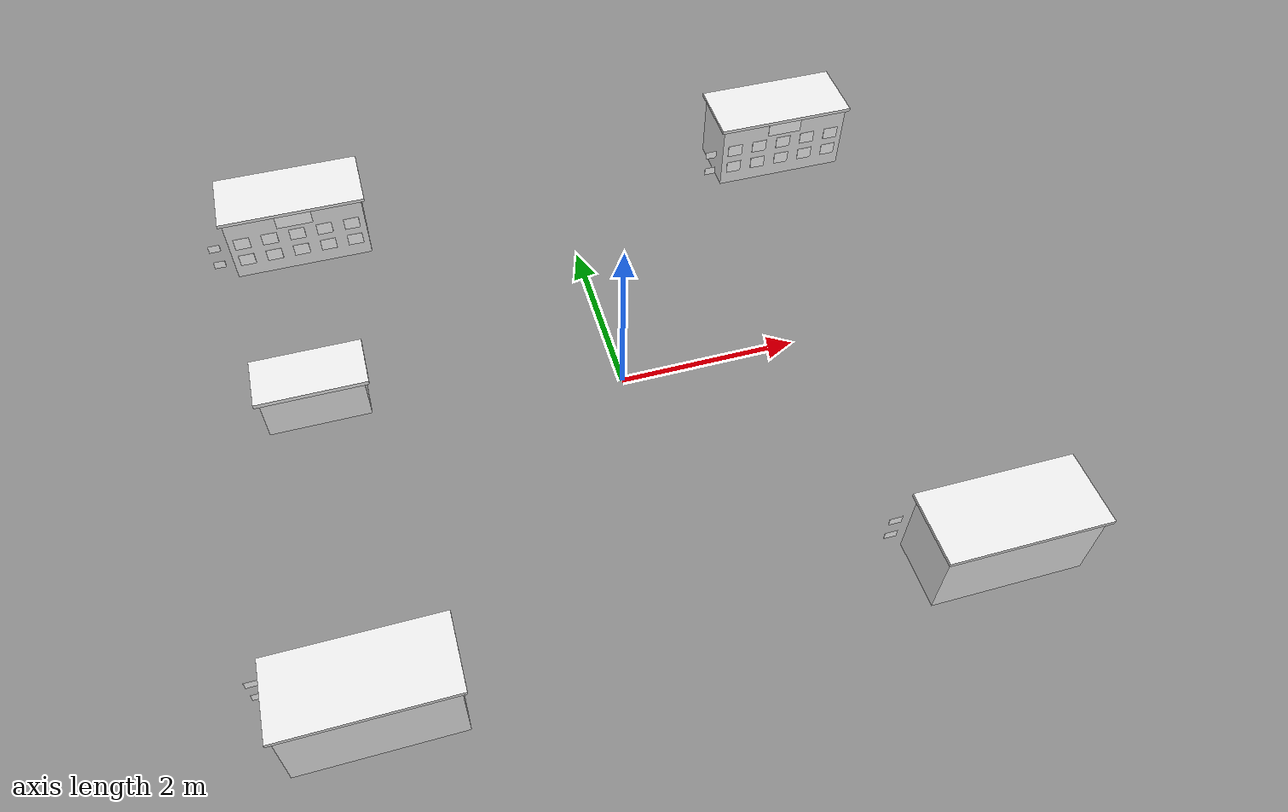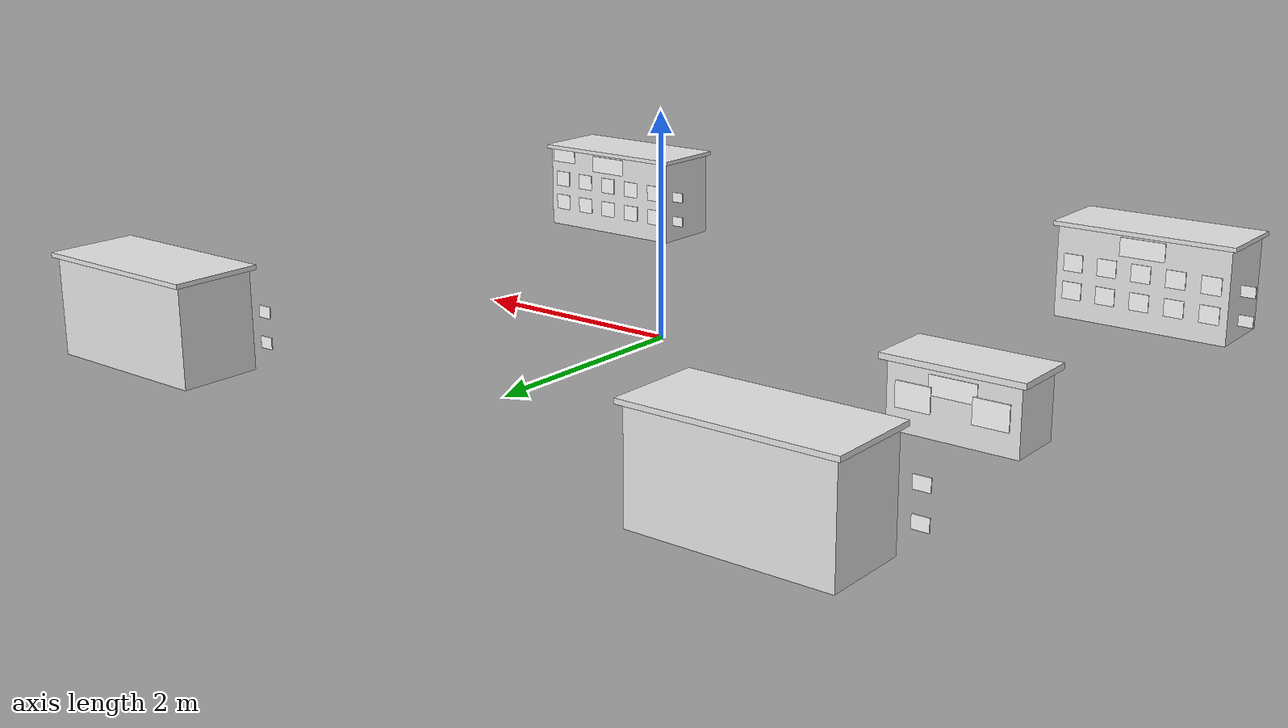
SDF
<sdf version="1.6">
 <world name="sq_community">
  <model name="sq_buildings">
   <static>1</static>
   <link name="bld_A_body">
    <collision name="bld_A_body_c">
     <pose>-3.2 3.1 0.425 0 0 0</pose>
     <geometry><box><size>1.6 0.7 0.85</size></box></geometry>
    </collision>
    <visual name="bld_A_body_v">
     <pose>-3.2 3.1 0.425 0 0 0</pose>
     <geometry><box><size>1.6 0.7 0.85</size></box></geometry>
     <material>
      <script><uri>file://media/materials/scripts/gazebo.material</uri><name>Gazebo/White</name></script>
      <ambient>0.407 0.396 0.374 1</ambient>
      <diffuse>0.74 0.72 0.68 1</diffuse>
      <specular>0.1 0.1 0.1 1</specular>
      <emissive>0 0 0 1</emissive>
     </material>
    </visual>
   </link>
   <link name="bld_A_win0">
    <collision name="bld_A_win0_c">
     <pose>-3.84 2.746 0.26 0 0 0</pose>
     <geometry><box><size>0.18 0.008 0.16</size></box></geometry>
    </collision>
    <visual name="bld_A_win0_v">
     <pose>-3.84 2.746 0.26 0 0 0</pose>
     <geometry><box><size>0.18 0.008 0.16</size></box></geometry>
     <material>
      <script>
       <uri>model://sq_textures/materials/scripts</uri>
       <uri>model://sq_textures/materials/textures</uri>
       <name>SQ_win_fire</name>
      </script>
      <ambient>1 1 1 1</ambient>
      <diffuse>1 1 1 1</diffuse>
      <specular>0.05 0.05 0.05 1</specular>
     </material>
    </visual>
   </link>
   <link name="bld_A_win1">
    <collision name="bld_A_win1_c">
     <pose>-3.52 2.746 0.26 0 0 0</pose>
     <geometry><box><size>0.18 0.008 0.16</size></box></geometry>
    </collision>
    <visual name="bld_A_win1_v">
     <pose>-3.52 2.746 0.26 0 0 0</pose>
     <geometry><box><size>0.18 0.008 0.16</size></box></geometry>
     <material>
      <script>
       <uri>model://sq_textures/materials/scripts</uri>
       <uri>model://sq_textures/materials/textures</uri>
       <name>SQ_win_normal</name>
      </script>
      <ambient>1 1 1 1</ambient>
      <diffuse>1 1 1 1</diffuse>
      <specular>0.05 0.05 0.05 1</specular>
     </material>
    </visual>
   </link>
   <link name="bld_A_win2">
    <collision name="bld_A_win2_c">
     <pose>-3.2 2.746 0.26 0 0 0</pose>
     <geometry><box><size>0.18 0.008 0.16</size></box></geometry>
    </collision>
    <visual name="bld_A_win2_v">
     <pose>-3.2 2.746 0.26 0 0 0</pose>
     <geometry><box><size>0.18 0.008 0.16</size></box></geometry>
     <material>
      <script>
       <uri>model://sq_textures/materials/scripts</uri>
       <uri>model://sq_textures/materials/textures</uri>
       <name>SQ_win_normal</name>
      </script>
      <ambient>1 1 1 1</ambient>
      <diffuse>1 1 1 1</diffuse>
      <specular>0.05 0.05 0.05 1</specular>
     </material>
    </visual>
   </link>
   <link name="bld_A_win3">
    <collision name="bld_A_win3_c">
     <pose>-2.88 2.746 0.26 0 0 0</pose>
     <geometry><box><size>0.18 0.008 0.16</size></box></geometry>
    </collision>
    <visual name="bld_A_win3_v">
     <pose>-2.88 2.746 0.26 0 0 0</pose>
     <geometry><box><size>0.18 0.008 0.16</size></box></geometry>
     <material>
      <script>
       <uri>model://sq_textures/materials/scripts</uri>
       <uri>model://sq_textures/materials/textures</uri>
       <name>SQ_win_fire</name>
      </script>
      <ambient>1 1 1 1</ambient>
      <diffuse>1 1 1 1</diffuse>
      <specular>0.05 0.05 0.05 1</specular>
     </material>
    </visual>
   </link>
   <link name="bld_A_win4">
    <collision name="bld_A_win4_c">
     <pose>-2.56 2.746 0.26 0 0 0</pose>
     <geometry><box><size>0.18 0.008 0.16</size></box></geometry>
    </collision>
    <visual name="bld_A_win4_v">
     <pose>-2.56 2.746 0.26 0 0 0</pose>
     <geometry><box><size>0.18 0.008 0.16</size></box></geometry>
     <material>
      <script>
       <uri>model://sq_textures/materials/scripts</uri>
       <uri>model://sq_textures/materials/textures</uri>
       <name>SQ_win_normal</name>
      </script>
      <ambient>1 1 1 1</ambient>
      <diffuse>1 1 1 1</diffuse>
      <specular>0.05 0.05 0.05 1</specular>
     </material>
    </visual>
   </link>
   <link name="bld_A_win5">
    <collision name="bld_A_win5_c">
     <pose>-3.84 2.746 0.52 0 0 0</pose>
     <geometry><box><size>0.18 0.008 0.16</size></box></geometry>
    </collision>
    <visual name="bld_A_win5_v">
     <pose>-3.84 2.746 0.52 0 0 0</pose>
     <geometry><box><size>0.18 0.008 0.16</size></box></geometry>
     <material>
      <script>
       <uri>model://sq_textures/materials/scripts</uri>
       <uri>model://sq_textures/materials/textures</uri>
       <name>SQ_win_normal</name>
      </script>
      <ambient>1 1 1 1</ambient>
      <diffuse>1 1 1 1</diffuse>
      <specular>0.05 0.05 0.05 1</specular>
     </material>
    </visual>
   </link>
   <link name="bld_A_win6">
    <collision name="bld_A_win6_c">
     <pose>-3.52 2.746 0.52 0 0 0</pose>
     <geometry><box><size>0.18 0.008 0.16</size></box></geometry>
    </collision>
    <visual name="bld_A_win6_v">
     <pose>-3.52 2.746 0.52 0 0 0</pose>
     <geometry><box><size>0.18 0.008 0.16</size></box></geometry>
     <material>
      <script>
       <uri>model://sq_textures/materials/scripts</uri>
       <uri>model://sq_textures/materials/textures</uri>
       <name>SQ_win_fire</name>
      </script>
      <ambient>1 1 1 1</ambient>
      <diffuse>1 1 1 1</diffuse>
      <specular>0.05 0.05 0.05 1</specular>
     </material>
    </visual>
   </link>
   <link name="bld_A_win7">
    <collision name="bld_A_win7_c">
     <pose>-3.2 2.746 0.52 0 0 0</pose>
     <geometry><box><size>0.18 0.008 0.16</size></box></geometry>
    </collision>
    <visual name="bld_A_win7_v">
     <pose>-3.2 2.746 0.52 0 0 0</pose>
     <geometry><box><size>0.18 0.008 0.16</size></box></geometry>
     <material>
      <script>
       <uri>model://sq_textures/materials/scripts</uri>
       <uri>model://sq_textures/materials/textures</uri>
       <name>SQ_win_normal</name>
      </script>
      <ambient>1 1 1 1</ambient>
      <diffuse>1 1 1 1</diffuse>
      <specular>0.05 0.05 0.05 1</specular>
     </material>
    </visual>
   </link>
   <link name="bld_A_win8">
    <collision name="bld_A_win8_c">
     <pose>-2.88 2.746 0.52 0 0 0</pose>
     <geometry><box><size>0.18 0.008 0.16</size></box></geometry>
    </collision>
    <visual name="bld_A_win8_v">
     <pose>-2.88 2.746 0.52 0 0 0</pose>
     <geometry><box><size>0.18 0.008 0.16</size></box></geometry>
     <material>
      <script>
       <uri>model://sq_textures/materials/scripts</uri>
       <uri>model://sq_textures/materials/textures</uri>
       <name>SQ_win_normal</name>
      </script>
      <ambient>1 1 1 1</ambient>
      <diffuse>1 1 1 1</diffuse>
      <specular>0.05 0.05 0.05 1</specular>
     </material>
    </visual>
   </link>
   <link name="bld_A_win9">
    <collision name="bld_A_win9_c">
     <pose>-2.56 2.746 0.52 0 0 0</pose>
     <geometry><box><size>0.18 0.008 0.16</size></box></geometry>
    </collision>
    <visual name="bld_A_win9_v">
     <pose>-2.56 2.746 0.52 0 0 0</pose>
     <geometry><box><size>0.18 0.008 0.16</size></box></geometry>
     <material>
      <script>
       <uri>model://sq_textures/materials/scripts</uri>
       <uri>model://sq_textures/materials/textures</uri>
       <name>SQ_win_normal</name>
      </script>
      <ambient>1 1 1 1</ambient>
      <diffuse>1 1 1 1</diffuse>
      <specular>0.05 0.05 0.05 1</specular>
     </material>
    </visual>
   </link>
   <link name="bld_A_fl0">
    <collision name="bld_A_fl0_c">
     <pose>-4.16 2.746 0.26 0 0 0</pose>
     <geometry><box><size>0.13 0.008 0.1</size></box></geometry>
    </collision>
    <visual name="bld_A_fl0_v">
     <pose>-4.16 2.746 0.26 0 0 0</pose>
     <geometry><box><size>0.13 0.008 0.1</size></box></geometry>
     <material>
      <script>
       <uri>model://sq_textures/materials/scripts</uri>
       <uri>model://sq_textures/materials/textures</uri>
       <name>SQ_floor_1f</name>
      </script>
      <ambient>1 1 1 1</ambient>
      <diffuse>1 1 1 1</diffuse>
      <specular>0.05 0.05 0.05 1</specular>
     </material>
    </visual>
   </link>
   <link name="bld_A_fl1">
    <collision name="bld_A_fl1_c">
     <pose>-4.16 2.746 0.52 0 0 0</pose>
     <geometry><box><size>0.13 0.008 0.1</size></box></geometry>
    </collision>
    <visual name="bld_A_fl1_v">
     <pose>-4.16 2.746 0.52 0 0 0</pose>
     <geometry><box><size>0.13 0.008 0.1</size></box></geometry>
     <material>
      <script>
       <uri>model://sq_textures/materials/scripts</uri>
       <uri>model://sq_textures/materials/textures</uri>
       <name>SQ_floor_2f</name>
      </script>
      <ambient>1 1 1 1</ambient>
      <diffuse>1 1 1 1</diffuse>
      <specular>0.05 0.05 0.05 1</specular>
     </material>
    </visual>
   </link>
   <link name="bld_A_plate">
    <collision name="bld_A_plate_c">
     <pose>-3.2 2.746 0.74 0 0 0</pose>
     <geometry><box><size>0.42 0.008 0.17</size></box></geometry>
    </collision>
    <visual name="bld_A_plate_v">
     <pose>-3.2 2.746 0.74 0 0 0</pose>
     <geometry><box><size>0.42 0.008 0.17</size></box></geometry>
     <material>
      <script>
       <uri>model://sq_textures/materials/scripts</uri>
       <uri>model://sq_textures/materials/textures</uri>
       <name>SQ_bldg_A</name>
      </script>
      <ambient>1 1 1 1</ambient>
      <diffuse>1 1 1 1</diffuse>
      <specular>0.05 0.05 0.05 1</specular>
     </material>
    </visual>
   </link>
   <link name="bld_A_roof">
    <visual name="bld_A_roof_v">
     <pose>-3.2 3.1 0.87 0 0 0</pose>
     <geometry><box><size>1.68 0.78 0.04</size></box></geometry>
     <material>
      <script><uri>file://media/materials/scripts/gazebo.material</uri><name>Gazebo/White</name></script>
      <ambient>0.2475 0.242 0.253 1</ambient>
      <diffuse>0.45 0.44 0.46 1</diffuse>
      <specular>0.1 0.1 0.1 1</specular>
      <emissive>0 0 0 1</emissive>
     </material>
    </visual>
   </link>
   <link name="bld_B_body">
    <collision name="bld_B_body_c">
     <pose>2.9 3.1 0.425 0 0 0</pose>
     <geometry><box><size>1.6 0.7 0.85</size></box></geometry>
    </collision>
    <visual name="bld_B_body_v">
     <pose>2.9 3.1 0.425 0 0 0</pose>
     <geometry><box><size>1.6 0.7 0.85</size></box></geometry>
     <material>
      <script><uri>file://media/materials/scripts/gazebo.material</uri><name>Gazebo/White</name></script>
      <ambient>0.407 0.396 0.374 1</ambient>
      <diffuse>0.74 0.72 0.68 1</diffuse>
      <specular>0.1 0.1 0.1 1</specular>
      <emissive>0 0 0 1</emissive>
     </material>
    </visual>
   </link>
   <link name="bld_B_win0">
    <collision name="bld_B_win0_c">
     <pose>2.26 2.746 0.26 0 0 0</pose>
     <geometry><box><size>0.18 0.008 0.16</size></box></geometry>
    </collision>
    <visual name="bld_B_win0_v">
     <pose>2.26 2.746 0.26 0 0 0</pose>
     <geometry><box><size>0.18 0.008 0.16</size></box></geometry>
     <material>
      <script>
       <uri>model://sq_textures/materials/scripts</uri>
       <uri>model://sq_textures/materials/textures</uri>
       <name>SQ_win_normal</name>
      </script>
      <ambient>1 1 1 1</ambient>
      <diffuse>1 1 1 1</diffuse>
      <specular>0.05 0.05 0.05 1</specular>
     </material>
    </visual>
   </link>
   <link name="bld_B_win1">
    <collision name="bld_B_win1_c">
     <pose>2.58 2.746 0.26 0 0 0</pose>
     <geometry><box><size>0.18 0.008 0.16</size></box></geometry>
    </collision>
    <visual name="bld_B_win1_v">
     <pose>2.58 2.746 0.26 0 0 0</pose>
     <geometry><box><size>0.18 0.008 0.16</size></box></geometry>
     <material>
      <script>
       <uri>model://sq_textures/materials/scripts</uri>
       <uri>model://sq_textures/materials/textures</uri>
       <name>SQ_win_fire</name>
      </script>
      <ambient>1 1 1 1</ambient>
      <diffuse>1 1 1 1</diffuse>
      <specular>0.05 0.05 0.05 1</specular>
     </material>
    </visual>
   </link>
   <link name="bld_B_win2">
    <collision name="bld_B_win2_c">
     <pose>2.9 2.746 0.26 0 0 0</pose>
     <geometry><box><size>0.18 0.008 0.16</size></box></geometry>
    </collision>
    <visual name="bld_B_win2_v">
     <pose>2.9 2.746 0.26 0 0 0</pose>
     <geometry><box><size>0.18 0.008 0.16</size></box></geometry>
     <material>
      <script>
       <uri>model://sq_textures/materials/scripts</uri>
       <uri>model://sq_textures/materials/textures</uri>
       <name>SQ_win_fire</name>
      </script>
      <ambient>1 1 1 1</ambient>
      <diffuse>1 1 1 1</diffuse>
      <specular>0.05 0.05 0.05 1</specular>
     </material>
    </visual>
   </link>
   <link name="bld_B_win3">
    <collision name="bld_B_win3_c">
     <pose>3.22 2.746 0.26 0 0 0</pose>
     <geometry><box><size>0.18 0.008 0.16</size></box></geometry>
    </collision>
    <visual name="bld_B_win3_v">
     <pose>3.22 2.746 0.26 0 0 0</pose>
     <geometry><box><size>0.18 0.008 0.16</size></box></geometry>
     <material>
      <script>
       <uri>model://sq_textures/materials/scripts</uri>
       <uri>model://sq_textures/materials/textures</uri>
       <name>SQ_win_normal</name>
      </script>
      <ambient>1 1 1 1</ambient>
      <diffuse>1 1 1 1</diffuse>
      <specular>0.05 0.05 0.05 1</specular>
     </material>
    </visual>
   </link>
   <link name="bld_B_win4">
    <collision name="bld_B_win4_c">
     <pose>3.54 2.746 0.26 0 0 0</pose>
     <geometry><box><size>0.18 0.008 0.16</size></box></geometry>
    </collision>
    <visual name="bld_B_win4_v">
     <pose>3.54 2.746 0.26 0 0 0</pose>
     <geometry><box><size>0.18 0.008 0.16</size></box></geometry>
     <material>
      <script>
       <uri>model://sq_textures/materials/scripts</uri>
       <uri>model://sq_textures/materials/textures</uri>
       <name>SQ_win_normal</name>
      </script>
      <ambient>1 1 1 1</ambient>
      <diffuse>1 1 1 1</diffuse>
      <specular>0.05 0.05 0.05 1</specular>
     </material>
    </visual>
   </link>
   <link name="bld_B_win5">
    <collision name="bld_B_win5_c">
     <pose>2.26 2.746 0.52 0 0 0</pose>
     <geometry><box><size>0.18 0.008 0.16</size></box></geometry>
    </collision>
    <visual name="bld_B_win5_v">
     <pose>2.26 2.746 0.52 0 0 0</pose>
     <geometry><box><size>0.18 0.008 0.16</size></box></geometry>
     <material>
      <script>
       <uri>model://sq_textures/materials/scripts</uri>
       <uri>model://sq_textures/materials/textures</uri>
       <name>SQ_win_fire</name>
      </script>
      <ambient>1 1 1 1</ambient>
      <diffuse>1 1 1 1</diffuse>
      <specular>0.05 0.05 0.05 1</specular>
     </material>
    </visual>
   </link>
   <link name="bld_B_win6">
    <collision name="bld_B_win6_c">
     <pose>2.58 2.746 0.52 0 0 0</pose>
     <geometry><box><size>0.18 0.008 0.16</size></box></geometry>
    </collision>
    <visual name="bld_B_win6_v">
     <pose>2.58 2.746 0.52 0 0 0</pose>
     <geometry><box><size>0.18 0.008 0.16</size></box></geometry>
     <material>
      <script>
       <uri>model://sq_textures/materials/scripts</uri>
       <uri>model://sq_textures/materials/textures</uri>
       <name>SQ_win_normal</name>
      </script>
      <ambient>1 1 1 1</ambient>
      <diffuse>1 1 1 1</diffuse>
      <specular>0.05 0.05 0.05 1</specular>
     </material>
    </visual>
   </link>
   <link name="bld_B_win7">
    <collision name="bld_B_win7_c">
     <pose>2.9 2.746 0.52 0 0 0</pose>
     <geometry><box><size>0.18 0.008 0.16</size></box></geometry>
    </collision>
    <visual name="bld_B_win7_v">
     <pose>2.9 2.746 0.52 0 0 0</pose>
     <geometry><box><size>0.18 0.008 0.16</size></box></geometry>
     <material>
      <script>
       <uri>model://sq_textures/materials/scripts</uri>
       <uri>model://sq_textures/materials/textures</uri>
       <name>SQ_win_fire</name>
      </script>
      <ambient>1 1 1 1</ambient>
      <diffuse>1 1 1 1</diffuse>
      <specular>0.05 0.05 0.05 1</specular>
     </material>
    </visual>
   </link>
   <link name="bld_B_win8">
    <collision name="bld_B_win8_c">
     <pose>3.22 2.746 0.52 0 0 0</pose>
     <geometry><box><size>0.18 0.008 0.16</size></box></geometry>
    </collision>
    <visual name="bld_B_win8_v">
     <pose>3.22 2.746 0.52 0 0 0</pose>
     <geometry><box><size>0.18 0.008 0.16</size></box></geometry>
     <material>
      <script>
       <uri>model://sq_textures/materials/scripts</uri>
       <uri>model://sq_textures/materials/textures</uri>
       <name>SQ_win_normal</name>
      </script>
      <ambient>1 1 1 1</ambient>
      <diffuse>1 1 1 1</diffuse>
      <specular>0.05 0.05 0.05 1</specular>
     </material>
    </visual>
   </link>
   <link name="bld_B_win9">
    <collision name="bld_B_win9_c">
     <pose>3.54 2.746 0.52 0 0 0</pose>
     <geometry><box><size>0.18 0.008 0.16</size></box></geometry>
    </collision>
    <visual name="bld_B_win9_v">
     <pose>3.54 2.746 0.52 0 0 0</pose>
     <geometry><box><size>0.18 0.008 0.16</size></box></geometry>
     <material>
      <script>
       <uri>model://sq_textures/materials/scripts</uri>
       <uri>model://sq_textures/materials/textures</uri>
       <name>SQ_win_fire</name>
      </script>
      <ambient>1 1 1 1</ambient>
      <diffuse>1 1 1 1</diffuse>
      <specular>0.05 0.05 0.05 1</specular>
     </material>
    </visual>
   </link>
   <link name="bld_B_fl0">
    <collision name="bld_B_fl0_c">
     <pose>1.94 2.746 0.26 0 0 0</pose>
     <geometry><box><size>0.13 0.008 0.1</size></box></geometry>
    </collision>
    <visual name="bld_B_fl0_v">
     <pose>1.94 2.746 0.26 0 0 0</pose>
     <geometry><box><size>0.13 0.008 0.1</size></box></geometry>
     <material>
      <script>
       <uri>model://sq_textures/materials/scripts</uri>
       <uri>model://sq_textures/materials/textures</uri>
       <name>SQ_floor_1f</name>
      </script>
      <ambient>1 1 1 1</ambient>
      <diffuse>1 1 1 1</diffuse>
      <specular>0.05 0.05 0.05 1</specular>
     </material>
    </visual>
   </link>
   <link name="bld_B_fl1">
    <collision name="bld_B_fl1_c">
     <pose>1.94 2.746 0.52 0 0 0</pose>
     <geometry><box><size>0.13 0.008 0.1</size></box></geometry>
    </collision>
    <visual name="bld_B_fl1_v">
     <pose>1.94 2.746 0.52 0 0 0</pose>
     <geometry><box><size>0.13 0.008 0.1</size></box></geometry>
     <material>
      <script>
       <uri>model://sq_textures/materials/scripts</uri>
       <uri>model://sq_textures/materials/textures</uri>
       <name>SQ_floor_2f</name>
      </script>
      <ambient>1 1 1 1</ambient>
      <diffuse>1 1 1 1</diffuse>
      <specular>0.05 0.05 0.05 1</specular>
     </material>
    </visual>
   </link>
   <link name="bld_B_plate">
    <collision name="bld_B_plate_c">
     <pose>2.9 2.746 0.74 0 0 0</pose>
     <geometry><box><size>0.42 0.008 0.17</size></box></geometry>
    </collision>
    <visual name="bld_B_plate_v">
     <pose>2.9 2.746 0.74 0 0 0</pose>
     <geometry><box><size>0.42 0.008 0.17</size></box></geometry>
     <material>
      <script>
       <uri>model://sq_textures/materials/scripts</uri>
       <uri>model://sq_textures/materials/textures</uri>
       <name>SQ_bldg_B</name>
      </script>
      <ambient>1 1 1 1</ambient>
      <diffuse>1 1 1 1</diffuse>
      <specular>0.05 0.05 0.05 1</specular>
     </material>
    </visual>
   </link>
   <link name="bld_B_roof">
    <visual name="bld_B_roof_v">
     <pose>2.9 3.1 0.87 0 0 0</pose>
     <geometry><box><size>1.68 0.78 0.04</size></box></geometry>
     <material>
      <script><uri>file://media/materials/scripts/gazebo.material</uri><name>Gazebo/White</name></script>
      <ambient>0.2475 0.242 0.253 1</ambient>
      <diffuse>0.45 0.44 0.46 1</diffuse>
      <specular>0.1 0.1 0.1 1</specular>
      <emissive>0 0 0 1</emissive>
     </material>
    </visual>
   </link>
   <link name="bld_C_body">
    <collision name="bld_C_body_c">
     <pose>-3.2 -3.1 0.425 0 0 0</pose>
     <geometry><box><size>1.6 0.7 0.85</size></box></geometry>
    </collision>
    <visual name="bld_C_body_v">
     <pose>-3.2 -3.1 0.425 0 0 0</pose>
     <geometry><box><size>1.6 0.7 0.85</size></box></geometry>
     <material>
      <script><uri>file://media/materials/scripts/gazebo.material</uri><name>Gazebo/White</name></script>
      <ambient>0.407 0.396 0.374 1</ambient>
      <diffuse>0.74 0.72 0.68 1</diffuse>
      <specular>0.1 0.1 0.1 1</specular>
      <emissive>0 0 0 1</emissive>
     </material>
    </visual>
   </link>
   <link name="bld_C_win0">
    <collision name="bld_C_win0_c">
     <pose>-3.84 -2.746 0.26 0 0 0</pose>
     <geometry><box><size>0.18 0.008 0.16</size></box></geometry>
    </collision>
    <visual name="bld_C_win0_v">
     <pose>-3.84 -2.746 0.26 0 0 0</pose>
     <geometry><box><size>0.18 0.008 0.16</size></box></geometry>
     <material>
      <script>
       <uri>model://sq_textures/materials/scripts</uri>
       <uri>model://sq_textures/materials/textures</uri>
       <name>SQ_win_normal</name>
      </script>
      <ambient>1 1 1 1</ambient>
      <diffuse>1 1 1 1</diffuse>
      <specular>0.05 0.05 0.05 1</specular>
     </material>
    </visual>
   </link>
   <link name="bld_C_win1">
    <collision name="bld_C_win1_c">
     <pose>-3.52 -2.746 0.26 0 0 0</pose>
     <geometry><box><size>0.18 0.008 0.16</size></box></geometry>
    </collision>
    <visual name="bld_C_win1_v">
     <pose>-3.52 -2.746 0.26 0 0 0</pose>
     <geometry><box><size>0.18 0.008 0.16</size></box></geometry>
     <material>
      <script>
       <uri>model://sq_textures/materials/scripts</uri>
       <uri>model://sq_textures/materials/textures</uri>
       <name>SQ_win_normal</name>
      </script>
      <ambient>1 1 1 1</ambient>
      <diffuse>1 1 1 1</diffuse>
      <specular>0.05 0.05 0.05 1</specular>
     </material>
    </visual>
   </link>
   <link name="bld_C_win2">
    <collision name="bld_C_win2_c">
     <pose>-3.2 -2.746 0.26 0 0 0</pose>
     <geometry><box><size>0.18 0.008 0.16</size></box></geometry>
    </collision>
    <visual name="bld_C_win2_v">
     <pose>-3.2 -2.746 0.26 0 0 0</pose>
     <geometry><box><size>0.18 0.008 0.16</size></box></geometry>
     <material>
      <script>
       <uri>model://sq_textures/materials/scripts</uri>
       <uri>model://sq_textures/materials/textures</uri>
       <name>SQ_win_normal</name>
      </script>
      <ambient>1 1 1 1</ambient>
      <diffuse>1 1 1 1</diffuse>
      <specular>0.05 0.05 0.05 1</specular>
     </material>
    </visual>
   </link>
   <link name="bld_C_win3">
    <collision name="bld_C_win3_c">
     <pose>-2.88 -2.746 0.26 0 0 0</pose>
     <geometry><box><size>0.18 0.008 0.16</size></box></geometry>
    </collision>
    <visual name="bld_C_win3_v">
     <pose>-2.88 -2.746 0.26 0 0 0</pose>
     <geometry><box><size>0.18 0.008 0.16</size></box></geometry>
     <material>
      <script>
       <uri>model://sq_textures/materials/scripts</uri>
       <uri>model://sq_textures/materials/textures</uri>
       <name>SQ_win_normal</name>
      </script>
      <ambient>1 1 1 1</ambient>
      <diffuse>1 1 1 1</diffuse>
      <specular>0.05 0.05 0.05 1</specular>
     </material>
    </visual>
   </link>
   <link name="bld_C_win4">
    <collision name="bld_C_win4_c">
     <pose>-2.56 -2.746 0.26 0 0 0</pose>
     <geometry><box><size>0.18 0.008 0.16</size></box></geometry>
    </collision>
    <visual name="bld_C_win4_v">
     <pose>-2.56 -2.746 0.26 0 0 0</pose>
     <geometry><box><size>0.18 0.008 0.16</size></box></geometry>
     <material>
      <script>
       <uri>model://sq_textures/materials/scripts</uri>
       <uri>model://sq_textures/materials/textures</uri>
       <name>SQ_win_fire</name>
      </script>
      <ambient>1 1 1 1</ambient>
      <diffuse>1 1 1 1</diffuse>
      <specular>0.05 0.05 0.05 1</specular>
     </material>
    </visual>
   </link>
   <link name="bld_C_win5">
    <collision name="bld_C_win5_c">
     <pose>-3.84 -2.746 0.52 0 0 0</pose>
     <geometry><box><size>0.18 0.008 0.16</size></box></geometry>
    </collision>
    <visual name="bld_C_win5_v">
     <pose>-3.84 -2.746 0.52 0 0 0</pose>
     <geometry><box><size>0.18 0.008 0.16</size></box></geometry>
     <material>
      <script>
       <uri>model://sq_textures/materials/scripts</uri>
       <uri>model://sq_textures/materials/textures</uri>
       <name>SQ_win_normal</name>
      </script>
      <ambient>1 1 1 1</ambient>
      <diffuse>1 1 1 1</diffuse>
      <specular>0.05 0.05 0.05 1</specular>
     </material>
    </visual>
   </link>
   <link name="bld_C_win6">
    <collision name="bld_C_win6_c">
     <pose>-3.52 -2.746 0.52 0 0 0</pose>
     <geometry><box><size>0.18 0.008 0.16</size></box></geometry>
    </collision>
    <visual name="bld_C_win6_v">
     <pose>-3.52 -2.746 0.52 0 0 0</pose>
     <geometry><box><size>0.18 0.008 0.16</size></box></geometry>
     <material>
      <script>
       <uri>model://sq_textures/materials/scripts</uri>
       <uri>model://sq_textures/materials/textures</uri>
       <name>SQ_win_normal</name>
      </script>
      <ambient>1 1 1 1</ambient>
      <diffuse>1 1 1 1</diffuse>
      <specular>0.05 0.05 0.05 1</specular>
     </material>
    </visual>
   </link>
   <link name="bld_C_win7">
    <collision name="bld_C_win7_c">
     <pose>-3.2 -2.746 0.52 0 0 0</pose>
     <geometry><box><size>0.18 0.008 0.16</size></box></geometry>
    </collision>
    <visual name="bld_C_win7_v">
     <pose>-3.2 -2.746 0.52 0 0 0</pose>
     <geometry><box><size>0.18 0.008 0.16</size></box></geometry>
     <material>
      <script>
       <uri>model://sq_textures/materials/scripts</uri>
       <uri>model://sq_textures/materials/textures</uri>
       <name>SQ_win_normal</name>
      </script>
      <ambient>1 1 1 1</ambient>
      <diffuse>1 1 1 1</diffuse>
      <specular>0.05 0.05 0.05 1</specular>
     </material>
    </visual>
   </link>
   <link name="bld_C_win8">
    <collision name="bld_C_win8_c">
     <pose>-2.88 -2.746 0.52 0 0 0</pose>
     <geometry><box><size>0.18 0.008 0.16</size></box></geometry>
    </collision>
    <visual name="bld_C_win8_v">
     <pose>-2.88 -2.746 0.52 0 0 0</pose>
     <geometry><box><size>0.18 0.008 0.16</size></box></geometry>
     <material>
      <script>
       <uri>model://sq_textures/materials/scripts</uri>
       <uri>model://sq_textures/materials/textures</uri>
       <name>SQ_win_fire</name>
      </script>
      <ambient>1 1 1 1</ambient>
      <diffuse>1 1 1 1</diffuse>
      <specular>0.05 0.05 0.05 1</specular>
     </material>
    </visual>
   </link>
   <link name="bld_C_win9">
    <collision name="bld_C_win9_c">
     <pose>-2.56 -2.746 0.52 0 0 0</pose>
     <geometry><box><size>0.18 0.008 0.16</size></box></geometry>
    </collision>
    <visual name="bld_C_win9_v">
     <pose>-2.56 -2.746 0.52 0 0 0</pose>
     <geometry><box><size>0.18 0.008 0.16</size></box></geometry>
     <material>
      <script>
       <uri>model://sq_textures/materials/scripts</uri>
       <uri>model://sq_textures/materials/textures</uri>
       <name>SQ_win_normal</name>
      </script>
      <ambient>1 1 1 1</ambient>
      <diffuse>1 1 1 1</diffuse>
      <specular>0.05 0.05 0.05 1</specular>
     </material>
    </visual>
   </link>
   <link name="bld_C_fl0">
    <collision name="bld_C_fl0_c">
     <pose>-4.16 -2.746 0.26 0 0 0</pose>
     <geometry><box><size>0.13 0.008 0.1</size></box></geometry>
    </collision>
    <visual name="bld_C_fl0_v">
     <pose>-4.16 -2.746 0.26 0 0 0</pose>
     <geometry><box><size>0.13 0.008 0.1</size></box></geometry>
     <material>
      <script>
       <uri>model://sq_textures/materials/scripts</uri>
       <uri>model://sq_textures/materials/textures</uri>
       <name>SQ_floor_1f</name>
      </script>
      <ambient>1 1 1 1</ambient>
      <diffuse>1 1 1 1</diffuse>
      <specular>0.05 0.05 0.05 1</specular>
     </material>
    </visual>
   </link>
   <link name="bld_C_fl1">
    <collision name="bld_C_fl1_c">
     <pose>-4.16 -2.746 0.52 0 0 0</pose>
     <geometry><box><size>0.13 0.008 0.1</size></box></geometry>
    </collision>
    <visual name="bld_C_fl1_v">
     <pose>-4.16 -2.746 0.52 0 0 0</pose>
     <geometry><box><size>0.13 0.008 0.1</size></box></geometry>
     <material>
      <script>
       <uri>model://sq_textures/materials/scripts</uri>
       <uri>model://sq_textures/materials/textures</uri>
       <name>SQ_floor_2f</name>
      </script>
      <ambient>1 1 1 1</ambient>
      <diffuse>1 1 1 1</diffuse>
      <specular>0.05 0.05 0.05 1</specular>
     </material>
    </visual>
   </link>
   <link name="bld_C_plate">
    <collision name="bld_C_plate_c">
     <pose>-3.2 -2.746 0.74 0 0 0</pose>
     <geometry><box><size>0.42 0.008 0.17</size></box></geometry>
    </collision>
    <visual name="bld_C_plate_v">
     <pose>-3.2 -2.746 0.74 0 0 0</pose>
     <geometry><box><size>0.42 0.008 0.17</size></box></geometry>
     <material>
      <script>
       <uri>model://sq_textures/materials/scripts</uri>
       <uri>model://sq_textures/materials/textures</uri>
       <name>SQ_bldg_C</name>
      </script>
      <ambient>1 1 1 1</ambient>
      <diffuse>1 1 1 1</diffuse>
      <specular>0.05 0.05 0.05 1</specular>
     </material>
    </visual>
   </link>
   <link name="bld_C_roof">
    <visual name="bld_C_roof_v">
     <pose>-3.2 -3.1 0.87 0 0 0</pose>
     <geometry><box><size>1.68 0.78 0.04</size></box></geometry>
     <material>
      <script><uri>file://media/materials/scripts/gazebo.material</uri><name>Gazebo/White</name></script>
      <ambient>0.2475 0.242 0.253 1</ambient>
      <diffuse>0.45 0.44 0.46 1</diffuse>
      <specular>0.1 0.1 0.1 1</specular>
      <emissive>0 0 0 1</emissive>
     </material>
    </visual>
   </link>
   <link name="bld_D_body">
    <collision name="bld_D_body_c">
     <pose>2.9 -3.1 0.425 0 0 0</pose>
     <geometry><box><size>1.6 0.7 0.85</size></box></geometry>
    </collision>
    <visual name="bld_D_body_v">
     <pose>2.9 -3.1 0.425 0 0 0</pose>
     <geometry><box><size>1.6 0.7 0.85</size></box></geometry>
     <material>
      <script><uri>file://media/materials/scripts/gazebo.material</uri><name>Gazebo/White</name></script>
      <ambient>0.407 0.396 0.374 1</ambient>
      <diffuse>0.74 0.72 0.68 1</diffuse>
      <specular>0.1 0.1 0.1 1</specular>
      <emissive>0 0 0 1</emissive>
     </material>
    </visual>
   </link>
   <link name="bld_D_win0">
    <collision name="bld_D_win0_c">
     <pose>2.26 -2.746 0.26 0 0 0</pose>
     <geometry><box><size>0.18 0.008 0.16</size></box></geometry>
    </collision>
    <visual name="bld_D_win0_v">
     <pose>2.26 -2.746 0.26 0 0 0</pose>
     <geometry><box><size>0.18 0.008 0.16</size></box></geometry>
     <material>
      <script>
       <uri>model://sq_textures/materials/scripts</uri>
       <uri>model://sq_textures/materials/textures</uri>
       <name>SQ_win_normal</name>
      </script>
      <ambient>1 1 1 1</ambient>
      <diffuse>1 1 1 1</diffuse>
      <specular>0.05 0.05 0.05 1</specular>
     </material>
    </visual>
   </link>
   <link name="bld_D_win1">
    <collision name="bld_D_win1_c">
     <pose>2.58 -2.746 0.26 0 0 0</pose>
     <geometry><box><size>0.18 0.008 0.16</size></box></geometry>
    </collision>
    <visual name="bld_D_win1_v">
     <pose>2.58 -2.746 0.26 0 0 0</pose>
     <geometry><box><size>0.18 0.008 0.16</size></box></geometry>
     <material>
      <script>
       <uri>model://sq_textures/materials/scripts</uri>
       <uri>model://sq_textures/materials/textures</uri>
       <name>SQ_win_normal</name>
      </script>
      <ambient>1 1 1 1</ambient>
      <diffuse>1 1 1 1</diffuse>
      <specular>0.05 0.05 0.05 1</specular>
     </material>
    </visual>
   </link>
   <link name="bld_D_win2">
    <collision name="bld_D_win2_c">
     <pose>2.9 -2.746 0.26 0 0 0</pose>
     <geometry><box><size>0.18 0.008 0.16</size></box></geometry>
    </collision>
    <visual name="bld_D_win2_v">
     <pose>2.9 -2.746 0.26 0 0 0</pose>
     <geometry><box><size>0.18 0.008 0.16</size></box></geometry>
     <material>
      <script>
       <uri>model://sq_textures/materials/scripts</uri>
       <uri>model://sq_textures/materials/textures</uri>
       <name>SQ_win_normal</name>
      </script>
      <ambient>1 1 1 1</ambient>
      <diffuse>1 1 1 1</diffuse>
      <specular>0.05 0.05 0.05 1</specular>
     </material>
    </visual>
   </link>
   <link name="bld_D_win3">
    <collision name="bld_D_win3_c">
     <pose>3.22 -2.746 0.26 0 0 0</pose>
     <geometry><box><size>0.18 0.008 0.16</size></box></geometry>
    </collision>
    <visual name="bld_D_win3_v">
     <pose>3.22 -2.746 0.26 0 0 0</pose>
     <geometry><box><size>0.18 0.008 0.16</size></box></geometry>
     <material>
      <script>
       <uri>model://sq_textures/materials/scripts</uri>
       <uri>model://sq_textures/materials/textures</uri>
       <name>SQ_win_normal</name>
      </script>
      <ambient>1 1 1 1</ambient>
      <diffuse>1 1 1 1</diffuse>
      <specular>0.05 0.05 0.05 1</specular>
     </material>
    </visual>
   </link>
   <link name="bld_D_win4">
    <collision name="bld_D_win4_c">
     <pose>3.54 -2.746 0.26 0 0 0</pose>
     <geometry><box><size>0.18 0.008 0.16</size></box></geometry>
    </collision>
    <visual name="bld_D_win4_v">
     <pose>3.54 -2.746 0.26 0 0 0</pose>
     <geometry><box><size>0.18 0.008 0.16</size></box></geometry>
     <material>
      <script>
       <uri>model://sq_textures/materials/scripts</uri>
       <uri>model://sq_textures/materials/textures</uri>
       <name>SQ_win_normal</name>
      </script>
      <ambient>1 1 1 1</ambient>
      <diffuse>1 1 1 1</diffuse>
      <specular>0.05 0.05 0.05 1</specular>
     </material>
    </visual>
   </link>
   <link name="bld_D_win5">
    <collision name="bld_D_win5_c">
     <pose>2.26 -2.746 0.52 0 0 0</pose>
     <geometry><box><size>0.18 0.008 0.16</size></box></geometry>
    </collision>
    <visual name="bld_D_win5_v">
     <pose>2.26 -2.746 0.52 0 0 0</pose>
     <geometry><box><size>0.18 0.008 0.16</size></box></geometry>
     <material>
      <script>
       <uri>model://sq_textures/materials/scripts</uri>
       <uri>model://sq_textures/materials/textures</uri>
       <name>SQ_win_normal</name>
      </script>
      <ambient>1 1 1 1</ambient>
      <diffuse>1 1 1 1</diffuse>
      <specular>0.05 0.05 0.05 1</specular>
     </material>
    </visual>
   </link>
   <link name="bld_D_win6">
    <collision name="bld_D_win6_c">
     <pose>2.58 -2.746 0.52 0 0 0</pose>
     <geometry><box><size>0.18 0.008 0.16</size></box></geometry>
    </collision>
    <visual name="bld_D_win6_v">
     <pose>2.58 -2.746 0.52 0 0 0</pose>
     <geometry><box><size>0.18 0.008 0.16</size></box></geometry>
     <material>
      <script>
       <uri>model://sq_textures/materials/scripts</uri>
       <uri>model://sq_textures/materials/textures</uri>
       <name>SQ_win_normal</name>
      </script>
      <ambient>1 1 1 1</ambient>
      <diffuse>1 1 1 1</diffuse>
      <specular>0.05 0.05 0.05 1</specular>
     </material>
    </visual>
   </link>
   <link name="bld_D_win7">
    <collision name="bld_D_win7_c">
     <pose>2.9 -2.746 0.52 0 0 0</pose>
     <geometry><box><size>0.18 0.008 0.16</size></box></geometry>
    </collision>
    <visual name="bld_D_win7_v">
     <pose>2.9 -2.746 0.52 0 0 0</pose>
     <geometry><box><size>0.18 0.008 0.16</size></box></geometry>
     <material>
      <script>
       <uri>model://sq_textures/materials/scripts</uri>
       <uri>model://sq_textures/materials/textures</uri>
       <name>SQ_win_hot</name>
      </script>
      <ambient>1 1 1 1</ambient>
      <diffuse>1 1 1 1</diffuse>
      <specular>0.05 0.05 0.05 1</specular>
     </material>
    </visual>
   </link>
   <link name="bld_D_win8">
    <collision name="bld_D_win8_c">
     <pose>3.22 -2.746 0.52 0 0 0</pose>
     <geometry><box><size>0.18 0.008 0.16</size></box></geometry>
    </collision>
    <visual name="bld_D_win8_v">
     <pose>3.22 -2.746 0.52 0 0 0</pose>
     <geometry><box><size>0.18 0.008 0.16</size></box></geometry>
     <material>
      <script>
       <uri>model://sq_textures/materials/scripts</uri>
       <uri>model://sq_textures/materials/textures</uri>
       <name>SQ_win_normal</name>
      </script>
      <ambient>1 1 1 1</ambient>
      <diffuse>1 1 1 1</diffuse>
      <specular>0.05 0.05 0.05 1</specular>
     </material>
    </visual>
   </link>
   <link name="bld_D_win9">
    <collision name="bld_D_win9_c">
     <pose>3.54 -2.746 0.52 0 0 0</pose>
     <geometry><box><size>0.18 0.008 0.16</size></box></geometry>
    </collision>
    <visual name="bld_D_win9_v">
     <pose>3.54 -2.746 0.52 0 0 0</pose>
     <geometry><box><size>0.18 0.008 0.16</size></box></geometry>
     <material>
      <script>
       <uri>model://sq_textures/materials/scripts</uri>
       <uri>model://sq_textures/materials/textures</uri>
       <name>SQ_win_normal</name>
      </script>
      <ambient>1 1 1 1</ambient>
      <diffuse>1 1 1 1</diffuse>
      <specular>0.05 0.05 0.05 1</specular>
     </material>
    </visual>
   </link>
   <link name="bld_D_fl0">
    <collision name="bld_D_fl0_c">
     <pose>1.94 -2.746 0.26 0 0 0</pose>
     <geometry><box><size>0.13 0.008 0.1</size></box></geometry>
    </collision>
    <visual name="bld_D_fl0_v">
     <pose>1.94 -2.746 0.26 0 0 0</pose>
     <geometry><box><size>0.13 0.008 0.1</size></box></geometry>
     <material>
      <script>
       <uri>model://sq_textures/materials/scripts</uri>
       <uri>model://sq_textures/materials/textures</uri>
       <name>SQ_floor_1f</name>
      </script>
      <ambient>1 1 1 1</ambient>
      <diffuse>1 1 1 1</diffuse>
      <specular>0.05 0.05 0.05 1</specular>
     </material>
    </visual>
   </link>
   <link name="bld_D_fl1">
    <collision name="bld_D_fl1_c">
     <pose>1.94 -2.746 0.52 0 0 0</pose>
     <geometry><box><size>0.13 0.008 0.1</size></box></geometry>
    </collision>
    <visual name="bld_D_fl1_v">
     <pose>1.94 -2.746 0.52 0 0 0</pose>
     <geometry><box><size>0.13 0.008 0.1</size></box></geometry>
     <material>
      <script>
       <uri>model://sq_textures/materials/scripts</uri>
       <uri>model://sq_textures/materials/textures</uri>
       <name>SQ_floor_2f</name>
      </script>
      <ambient>1 1 1 1</ambient>
      <diffuse>1 1 1 1</diffuse>
      <specular>0.05 0.05 0.05 1</specular>
     </material>
    </visual>
   </link>
   <link name="bld_D_plate">
    <collision name="bld_D_plate_c">
     <pose>2.9 -2.746 0.74 0 0 0</pose>
     <geometry><box><size>0.42 0.008 0.17</size></box></geometry>
    </collision>
    <visual name="bld_D_plate_v">
     <pose>2.9 -2.746 0.74 0 0 0</pose>
     <geometry><box><size>0.42 0.008 0.17</size></box></geometry>
     <material>
      <script>
       <uri>model://sq_textures/materials/scripts</uri>
       <uri>model://sq_textures/materials/textures</uri>
       <name>SQ_bldg_D</name>
      </script>
      <ambient>1 1 1 1</ambient>
      <diffuse>1 1 1 1</diffuse>
      <specular>0.05 0.05 0.05 1</specular>
     </material>
    </visual>
   </link>
   <link name="bld_D_roof">
    <visual name="bld_D_roof_v">
     <pose>2.9 -3.1 0.87 0 0 0</pose>
     <geometry><box><size>1.68 0.78 0.04</size></box></geometry>
     <material>
      <script><uri>file://media/materials/scripts/gazebo.material</uri><name>Gazebo/White</name></script>
      <ambient>0.2475 0.242 0.253 1</ambient>
      <diffuse>0.45 0.44 0.46 1</diffuse>
      <specular>0.1 0.1 0.1 1</specular>
      <emissive>0 0 0 1</emissive>
     </material>
    </visual>
   </link>
   <link name="bld_D_temp">
    <collision name="bld_D_temp_c">
     <pose>3.52 -2.746 0.78 0 0 0</pose>
     <geometry><box><size>0.3 0.008 0.14</size></box></geometry>
    </collision>
    <visual name="bld_D_temp_v">
     <pose>3.52 -2.746 0.78 0 0 0</pose>
     <geometry><box><size>0.3 0.008 0.14</size></box></geometry>
     <material>
      <script>
       <uri>model://sq_textures/materials/scripts</uri>
       <uri>model://sq_textures/materials/textures</uri>
       <name>SQ_panel_temp</name>
      </script>
      <ambient>1 1 1 1</ambient>
      <diffuse>1 1 1 1</diffuse>
      <specular>0.05 0.05 0.05 1</specular>
     </material>
    </visual>
   </link>
  </model>
  <model name="sq_station">
   <static>1</static>
   <link name="station_body">
    <collision name="station_body_c">
     <pose>-3.3 0.55 0.275 0 0 0</pose>
     <geometry><box><size>1.1 0.5 0.55</size></box></geometry>
    </collision>
    <visual name="station_body_v">
     <pose>-3.3 0.55 0.275 0 0 0</pose>
     <geometry><box><size>1.1 0.5 0.55</size></box></geometry>
     <material>
      <script><uri>file://media/materials/scripts/gazebo.material</uri><name>Gazebo/White</name></script>
      <ambient>0.44 0.44 0.429 1</ambient>
      <diffuse>0.8 0.8 0.78 1</diffuse>
      <specular>0.1 0.1 0.1 1</specular>
      <emissive>0 0 0 1</emissive>
     </material>
    </visual>
   </link>
   <link name="station_roof">
    <collision name="station_roof_c">
     <pose>-3.3 0.55 0.575 0 0 0</pose>
     <geometry><box><size>1.2 0.6 0.05</size></box></geometry>
    </collision>
    <visual name="station_roof_v">
     <pose>-3.3 0.55 0.575 0 0 0</pose>
     <geometry><box><size>1.2 0.6 0.05</size></box></geometry>
     <material>
      <script><uri>file://media/materials/scripts/gazebo.material</uri><name>Gazebo/White</name></script>
      <ambient>0.1925 0.231 0.33 1</ambient>
      <diffuse>0.35 0.42 0.6 1</diffuse>
      <specular>0.1 0.1 0.1 1</specular>
      <emissive>0 0 0 1</emissive>
     </material>
    </visual>
   </link>
   <link name="station_plate">
    <collision name="station_plate_c">
     <pose>-3.3 0.804 0.42 0 0 0</pose>
     <geometry><box><size>0.4 0.008 0.16</size></box></geometry>
    </collision>
    <visual name="station_plate_v">
     <pose>-3.3 0.804 0.42 0 0 0</pose>
     <geometry><box><size>0.4 0.008 0.16</size></box></geometry>
     <material>
      <script>
       <uri>model://sq_textures/materials/scripts</uri>
       <uri>model://sq_textures/materials/textures</uri>
       <name>SQ_station_plate</name>
      </script>
      <ambient>1 1 1 1</ambient>
      <diffuse>1 1 1 1</diffuse>
      <specular>0.05 0.05 0.05 1</specular>
     </material>
    </visual>
   </link>
   <link name="gauge_1">
    <collision name="gauge_1_c">
     <pose>-3.62 0.815 0.3 0 0 0</pose>
     <geometry><box><size>0.3 0.01 0.21</size></box></geometry>
    </collision>
    <visual name="gauge_1_v">
     <pose>-3.62 0.815 0.3 0 0 0</pose>
     <geometry><box><size>0.3 0.01 0.21</size></box></geometry>
     <material>
      <script>
       <uri>model://sq_textures/materials/scripts</uri>
       <uri>model://sq_textures/materials/textures</uri>
       <name>SQ_gauge_1</name>
      </script>
      <ambient>1 1 1 1</ambient>
      <diffuse>1 1 1 1</diffuse>
      <specular>0.05 0.05 0.05 1</specular>
     </material>
    </visual>
   </link>
   <link name="gauge_2">
    <collision name="gauge_2_c">
     <pose>-2.98 0.815 0.3 0 0 0</pose>
     <geometry><box><size>0.3 0.01 0.21</size></box></geometry>
    </collision>
    <visual name="gauge_2_v">
     <pose>-2.98 0.815 0.3 0 0 0</pose>
     <geometry><box><size>0.3 0.01 0.21</size></box></geometry>
     <material>
      <script>
       <uri>model://sq_textures/materials/scripts</uri>
       <uri>model://sq_textures/materials/textures</uri>
       <name>SQ_gauge_2</name>
      </script>
      <ambient>1 1 1 1</ambient>
      <diffuse>1 1 1 1</diffuse>
      <specular>0.05 0.05 0.05 1</specular>
     </material>
    </visual>
   </link>
  </model>
 </world>
</sdf>
